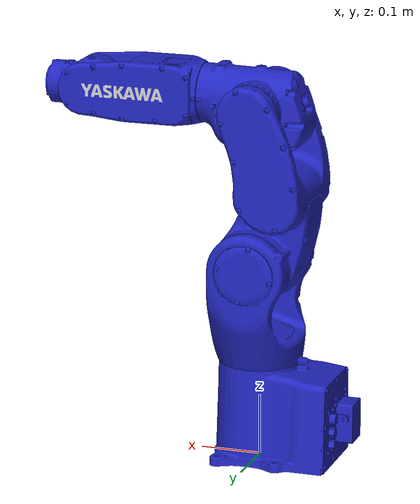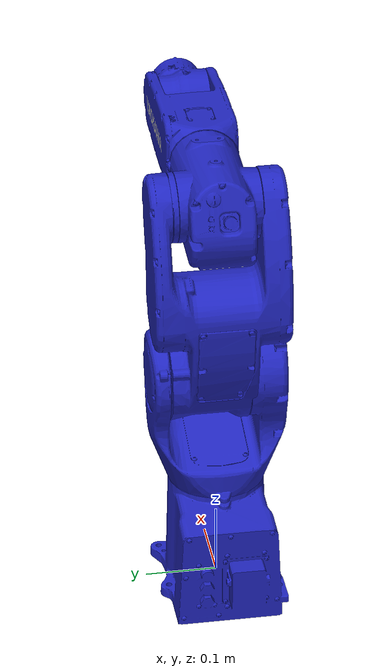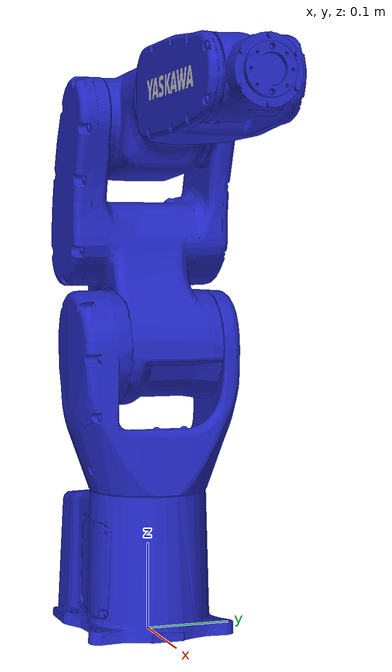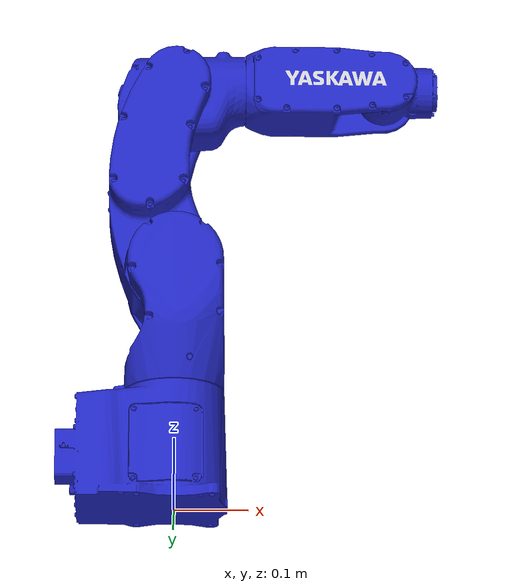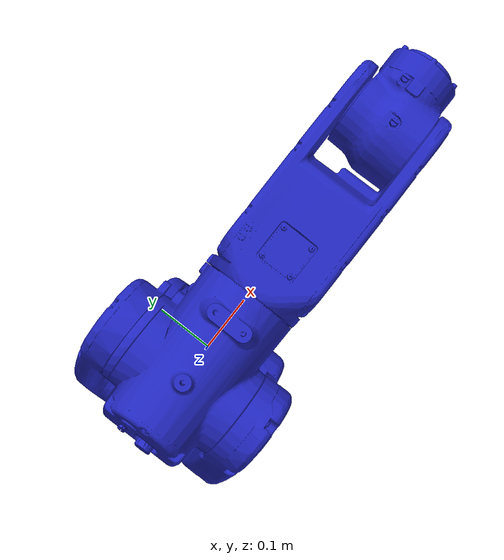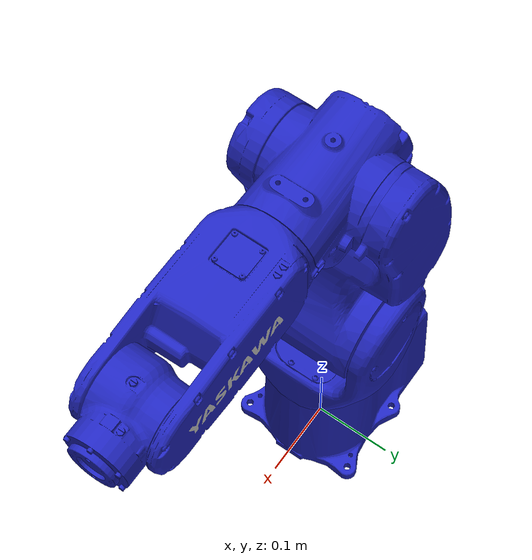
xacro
<?xml version="1.0"?>
<robot xmlns:xacro="http://www.ros.org/wiki/xacro" name="motoman_gp4">
    <xacro:arg name="initial_positions_file" default="initial_positions.yaml" />

    <!-- Import motoman_gp4 urdf file -->
    <xacro:include filename="$(find motoman_gp4_support)/urdf/gp4.xacro" />

    <!-- Import control_xacro -->
    <xacro:include filename="motoman_gp4.ros2_control.xacro" />

    <xacro:motoman_gp4_ros2_control name="FakeSystem" initial_positions_file="$(arg initial_positions_file)"/>

</robot>

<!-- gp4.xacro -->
<robot name="motoman_gp4" xmlns:xacro="http://ros.org/wiki/xacro">
  <xacro:include filename="$(find motoman_gp4_support)/urdf/gp4_macro.xacro" />
  <xacro:motoman_gp4 prefix=""/>
</robot>

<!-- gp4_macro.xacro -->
<robot xmlns:xacro="http://ros.org/wiki/xacro">
  <xacro:macro name="motoman_gp4" params="prefix">
    <xacro:include filename="$(find motoman_resources)/urdf/common_materials.xacro"/>

    <!-- link list -->
    <link name="${prefix}base_link">
      <visual>
        <geometry>
          <mesh filename="package://motoman_gp4_support/meshes/gp4/visual/base_link.dae"/>
        </geometry>
        <xacro:material_yaskawa_blue/>
      </visual>
      <collision>
        <geometry>
          <mesh filename="package://motoman_gp4_support/meshes/gp4/collision/base_link.stl"/>
        </geometry>
      </collision>
    </link>
    <link name="${prefix}link_1_s">
      <visual>
        <geometry>
          <mesh filename="package://motoman_gp4_support/meshes/gp4/visual/link_1_s.dae"/>
        </geometry>
        <xacro:material_yaskawa_blue/>
      </visual>
      <collision>
        <geometry>
          <mesh filename="package://motoman_gp4_support/meshes/gp4/collision/link_1_s.stl"/>
        </geometry>
      </collision>
    </link>
    <link name="${prefix}link_2_l">
      <visual>
        <geometry>
          <mesh filename="package://motoman_gp4_support/meshes/gp4/visual/link_2_l.dae"/>
        </geometry>
        <xacro:material_yaskawa_blue/>
      </visual>
      <collision>
        <geometry>
          <mesh filename="package://motoman_gp4_support/meshes/gp4/collision/link_2_l.stl"/>
        </geometry>
      </collision>
    </link>
    <link name="${prefix}link_3_u">
      <visual>
        <geometry>
          <mesh filename="package://motoman_gp4_support/meshes/gp4/visual/link_3_u.dae"/>
        </geometry>
        <xacro:material_yaskawa_blue/>
      </visual>
      <collision>
        <geometry>
          <mesh filename="package://motoman_gp4_support/meshes/gp4/collision/link_3_u.stl"/>
        </geometry>
      </collision>
    </link>
    <link name="${prefix}link_4_r">
      <visual>
        <geometry>
          <mesh filename="package://motoman_gp4_support/meshes/gp4/visual/link_4_r.dae"/>
        </geometry>
        <xacro:material_yaskawa_blue/>
      </visual>
      <collision>
        <geometry>
          <mesh filename="package://motoman_gp4_support/meshes/gp4/collision/link_4_r.stl"/>
        </geometry>
      </collision>
    </link>
    <link name="${prefix}link_5_b">
      <visual>
        <geometry>
          <mesh filename="package://motoman_gp4_support/meshes/gp4/visual/link_5_b.dae"/>
        </geometry>
        <xacro:material_yaskawa_blue/>
      </visual>
      <collision>
        <geometry>
          <mesh filename="package://motoman_gp4_support/meshes/gp4/collision/link_5_b.stl"/>
        </geometry>
      </collision>
    </link>
    <link name="${prefix}link_6_t">
      <visual>
        <geometry>
          <mesh filename="package://motoman_gp4_support/meshes/gp4/visual/link_6_t.dae"/>
        </geometry>
        <xacro:material_yaskawa_silver/>
      </visual>
      <collision>
        <geometry>
          <mesh filename="package://motoman_gp4_support/meshes/gp4/collision/link_6_t.stl"/>
        </geometry>
      </collision>
    </link>
    <!-- end of link list -->

    <!-- joint list -->
    <joint name="${prefix}joint_1_s" type="revolute">
      <parent link="${prefix}base_link"/>
      <child link="${prefix}link_1_s"/>
      <origin xyz="0 0 0.330" rpy="0 0 0" />
      <axis xyz="0 0 1" />
      <limit lower="${radians(-170)}" upper="${radians(170)}" effort="220.5" velocity="${radians(465)}"/>
    </joint>
    <joint name="${prefix}joint_2_l" type="revolute">
      <parent link="${prefix}link_1_s"/>
      <child link="${prefix}link_2_l"/>
      <origin xyz="0 0 0" rpy="0 0 0" />
      <axis xyz="0 1 0" />
      <limit lower="${radians(-110)}" upper="${radians(130)}" effort="305.76" velocity="${radians(465)}"/>
    </joint>
    <joint name="${prefix}joint_3_u" type="revolute">
      <parent link="${prefix}link_2_l"/>
      <child link="${prefix}link_3_u"/>
      <origin xyz="0 0 0.260" rpy="0 0 0" />
      <axis xyz="0 -1 0" />
      <limit lower="${radians(-65)}" upper="${radians(200)}" effort="95.55" velocity="${radians(525)}"/>
    </joint>
    <joint name="${prefix}joint_4_r" type="revolute">
      <parent link="${prefix}link_3_u"/>
      <child link="${prefix}link_4_r"/>
      <origin xyz="0.290 0 0.015" rpy="0 0 0" />
      <axis xyz="-1 0 0" />
      <limit lower="${radians(-200)}" upper="${radians(200)}" effort="48.02" velocity="${radians(565)}"/>
    </joint>
    <joint name="${prefix}joint_5_b" type="revolute">
      <parent link="${prefix}link_4_r"/>
      <child link="${prefix}link_5_b"/>
      <origin xyz="0 0 0" rpy="0 0 0" />
      <axis xyz="0 -1 0" />
      <limit lower="${radians(-123)}" upper="${radians(123)}" effort="38.42" velocity="${radians(565)}"/>
    </joint>
    <joint name="${prefix}joint_6_t" type="revolute">
      <parent link="${prefix}link_5_b"/>
      <child link="${prefix}link_6_t"/>
      <origin xyz="0 0 0" rpy="0 0 0" />
      <axis xyz="-1 0 0" />
      <limit lower="${radians(-455)}" upper="${radians(455)}" effort="16.46" velocity="${radians(1000)}"/>
    </joint>
    <!-- end of joint list -->

    <!-- ROS-Industrial 'flange' frame: attachment point for EEF models -->
    <link name="${prefix}flange"/>
    <joint name="${prefix}joint_6_t-flange" type="fixed">
      <origin xyz="0.072 0 0" rpy="0 0 0"/>
      <parent link="${prefix}link_6_t"/>
      <child link="${prefix}flange"/>
    </joint>

    <!-- ROS-Industrial 'tool0' frame: all-zeros tool frame -->
    <link name="${prefix}tool0"/>
    <joint name="${prefix}flange-tool0" type="fixed">
      <origin xyz="0 0 0" rpy="${radians(180)} ${radians(-90)} 0"/>
      <parent link="${prefix}flange"/>
      <child link="${prefix}tool0"/>
    </joint>

    <!-- ROS base_link to Robot Manufacturer World Coordinates transform -->
    <link name="${prefix}base" />
    <joint name="${prefix}base_link-base" type="fixed">
      <origin xyz="0 0 0.330" rpy="0 0 0"/>
      <parent link="${prefix}base_link"/>
      <child link="${prefix}base"/>
    </joint>
  </xacro:macro>
</robot>
